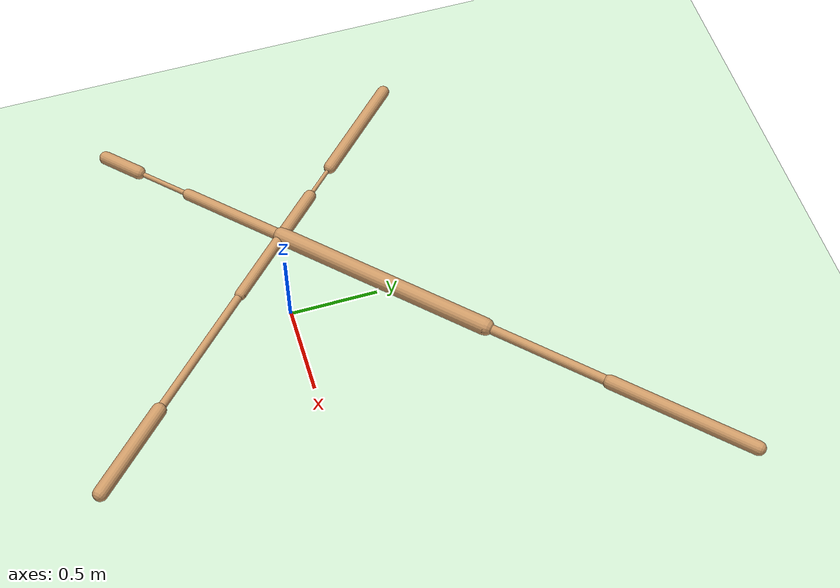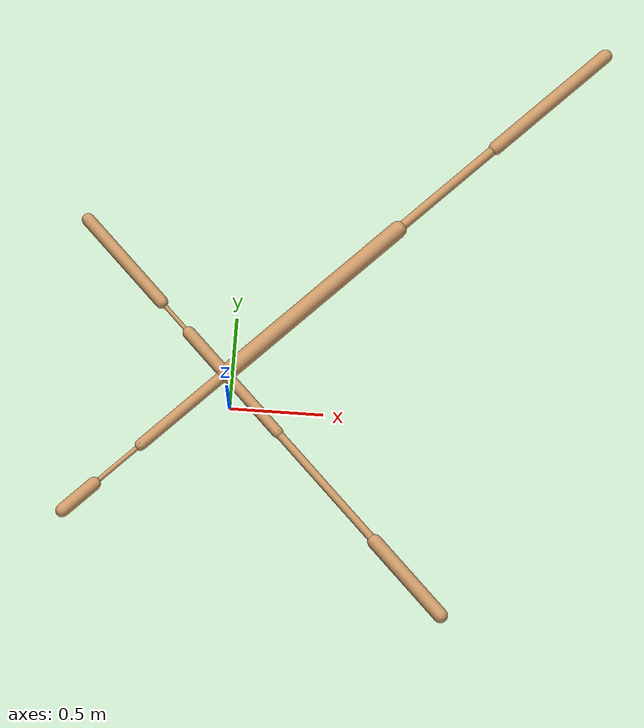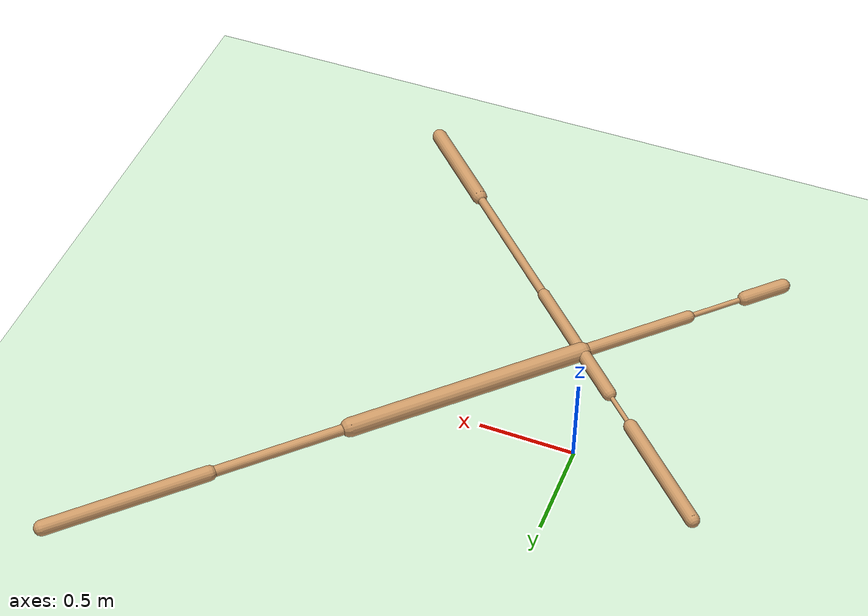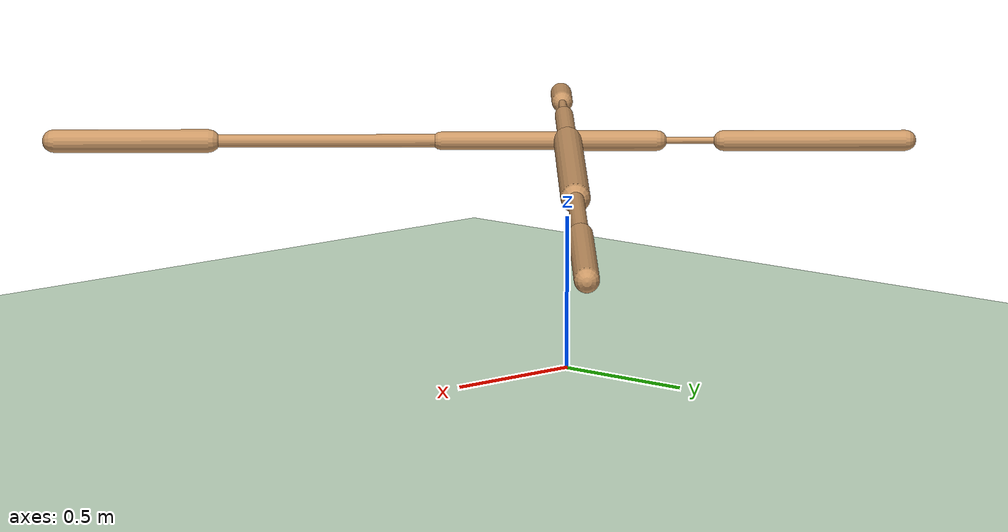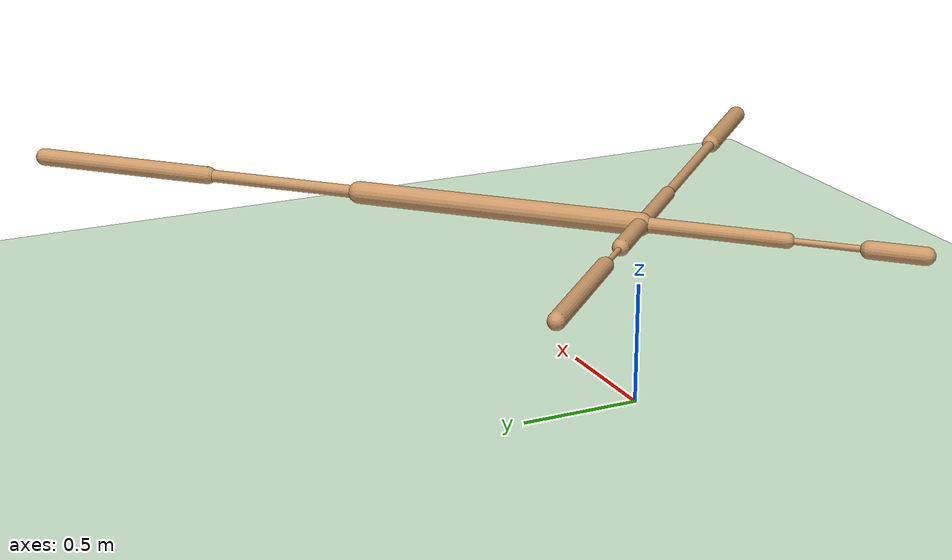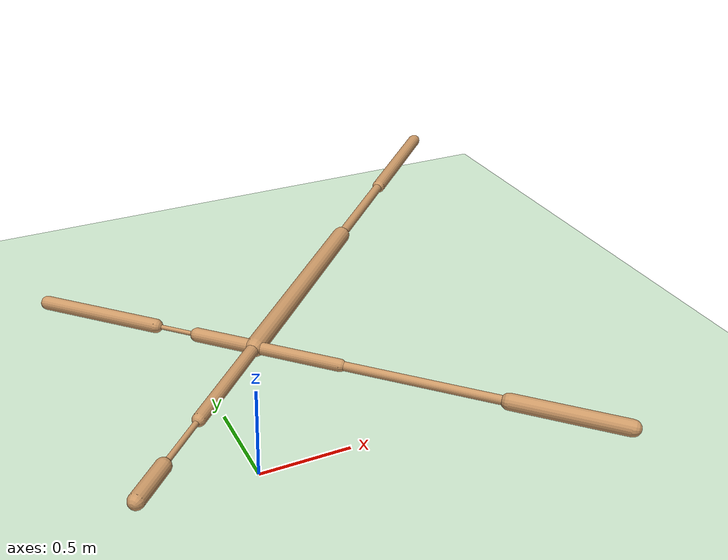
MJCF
<mujoco model="ant">
  <compiler angle="degree" coordinate="local" inertiafromgeom="true" />
  <option integrator="RK4" timestep="0.01" />
  <custom>
    <numeric data="0.0 0.0 0.55 1.0 0.0 0.0 0.0 0.0 1.0 0.0 -1.0 0.0 -1.0 0.0 1.0" name="init_qpos" />
  </custom>
  <default>
    <joint armature="1" damping="1" limited="true" />
    <geom conaffinity="0" condim="3" density="5.0" friction="1 0.5 0.5" margin="0.01" rgba="0.8 0.6 0.4 1" />
  </default>
  <asset>
    <texture builtin="gradient" height="100" rgb1="1 1 1" rgb2="0 0 0" type="skybox" width="100" />
    <texture builtin="flat" height="1278" mark="cross" markrgb="1 1 1" name="texgeom" random="0.01" rgb1="0.8 0.6 0.4" rgb2="0.8 0.6 0.4" type="cube" width="127" />
    <texture builtin="checker" height="100" name="texplane" rgb1="0 0 0" rgb2="0.8 0.8 0.8" type="2d" width="100" />
    <material name="MatPlane" reflectance="0.5" shininess="1" specular="1" texrepeat="60 60" texture="texplane" />
    <material name="geom" texture="texgeom" texuniform="true" />
  </asset>
  <worldbody>
    <light cutoff="100" diffuse="1 1 1" dir="-0 0 -1.3" directional="true" exponent="1" pos="0 0 1.3" specular=".1 .1 .1" />
    <geom conaffinity="1" condim="3" material="MatPlane" name="floor" pos="0 0 0" rgba="0.8 0.9 0.8 1" size="40 40 40" type="plane" />
    <body name="torso" pos="0 0 0.75">
      <camera name="track" mode="trackcom" pos="0 -11 5" xyaxes="1 0 0 0 0.5 1" />
      <geom name="torso_geom" pos="0 0 0" size="0.016857750713825226" type="sphere" />
      <joint armature="0" damping="0" limited="false" margin="0.01" name="root" pos="0 0 0" type="free" />
      <body name="front_left_leg" pos="0 0 0">
        <geom fromto="0 0 0 0.8348665833473206 0.8348665833473206 0" name="aux_1_geom" size="0.045872487127780914" type="capsule" />
        <body name="aux_1" pos="0.8348665833473206 0.8348665833473206 0">
          <joint axis="0 0 1" name="hip_1" pos="0.0 0.0 0.0" range="-30 30" type="hinge" />
          <geom fromto="0 0 0 0.4819928705692291 0.4819928705692291 0" name="left_leg_geom" size="0.02561004087328911" type="capsule" />
          <body name="left_leg_geom_aux" pos="0.4819928705692291 0.4819928705692291 0">
            <joint axis="-1 1 0" name="ankle_1" pos="0.0 0.0 0.0" range="30 70" type="hinge" />
            <geom fromto="0 0 0 0.5492769479751587 0.5492769479751587 0" name="left_ankle_geom" size="0.036761388182640076" type="capsule" />
          </body>
        </body>
      </body>
      <body name="front_right_leg" pos="0 0 0">
        <geom fromto="0 0 0 -0.20519140362739563 0.20519140362739563 0" name="aux_2_geom" size="0.033501580357551575" type="capsule" />
        <body name="aux_2" pos="-0.20519140362739563 0.20519140362739563 0">
          <joint axis="0 0 1" name="hip_2" pos="0.0 0.0 0.0" range="-30 30" type="hinge" />
          <geom fromto="0 0 0 -0.15394915640354156 0.15394915640354156 0" name="right_leg_geom" size="0.010897175408899784" type="capsule" />
          <body name="right_leg_geom_aux" pos="-0.15394915640354156 0.15394915640354156 0">
            <joint axis="1 1 0" name="ankle_2" pos="0.0 0.0 0.0" range="-70 -30" type="hinge" />
            <geom fromto="0 0 0 -0.4190119504928589 0.4190119504928589 0" name="right_ankle_geom" size="0.033813998103141785" type="capsule" />
          </body>
        </body>
      </body>
      <body name="back_leg" pos="0 0 0">
        <geom fromto="0 0 0 -0.40434232354164124 -0.40434232354164124 0" name="aux_3_geom" size="0.030533501878380775" type="capsule" />
        <body name="aux_3" pos="-0.40434232354164124 -0.40434232354164124 0">
          <joint axis="0 0 1" name="hip_3" pos="0.0 0.0 0.0" range="-30 30" type="hinge" />
          <geom fromto="0 0 0 -0.21949514746665955 -0.21949514746665955 0" name="back_leg_geom" size="0.013113997876644135" type="capsule" />
          <body name="back_leg_geom_aux" pos="-0.21949514746665955 -0.21949514746665955 0">
            <joint axis="-1 1 0" name="ankle_3" pos="0.0 0.0 0.0" range="-70 -30" type="hinge" />
            <geom fromto="0 0 0 -0.14907097816467285 -0.14907097816467285 0" name="third_ankle_geom" size="0.03548629581928253" type="capsule" />
          </body>
        </body>
      </body>
      <body name="right_back_leg" pos="0 0 0">
        <geom fromto="0 0 0 0.2907007038593292 -0.2907007038593292 0" name="aux_4_geom" size="0.02955452725291252" type="capsule" />
        <body name="aux_4" pos="0.2907007038593292 -0.2907007038593292 0">
          <joint axis="0 0 1" name="hip_4" pos="0.0 0.0 0.0" range="-30 30" type="hinge" />
          <geom fromto="0 0 0 0.5343275666236877 -0.5343275666236877 0" name="rightback_leg_geom" size="0.02143251895904541" type="capsule" />
          <body name="rightback_leg_geom_aux" pos="0.5343275666236877 -0.5343275666236877 0">
            <joint axis="1 1 0" name="ankle_4" pos="0.0 0.0 0.0" range="30 70" type="hinge" />
            <geom fromto="0 0 0 0.3565549850463867 -0.3565549850463867 0" name="fourth_ankle_geom" size="0.0378812700510025" type="capsule" />
          </body>
        </body>
      </body>
    </body>
  </worldbody>
  <actuator>
    <motor ctrllimited="true" ctrlrange="-1.0 1.0" joint="hip_4" gear="150" />
    <motor ctrllimited="true" ctrlrange="-1.0 1.0" joint="ankle_4" gear="150" />
    <motor ctrllimited="true" ctrlrange="-1.0 1.0" joint="hip_1" gear="150" />
    <motor ctrllimited="true" ctrlrange="-1.0 1.0" joint="ankle_1" gear="150" />
    <motor ctrllimited="true" ctrlrange="-1.0 1.0" joint="hip_2" gear="150" />
    <motor ctrllimited="true" ctrlrange="-1.0 1.0" joint="ankle_2" gear="150" />
    <motor ctrllimited="true" ctrlrange="-1.0 1.0" joint="hip_3" gear="150" />
    <motor ctrllimited="true" ctrlrange="-1.0 1.0" joint="ankle_3" gear="150" />
  </actuator>
</mujoco>
